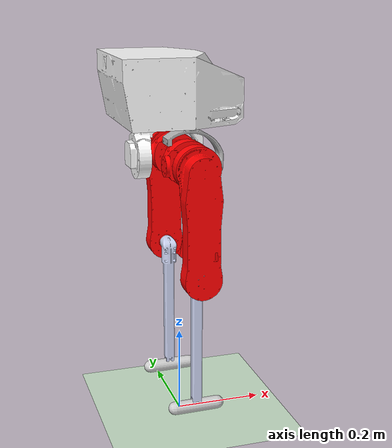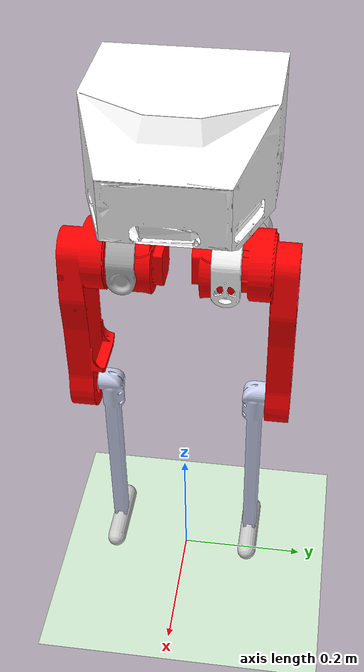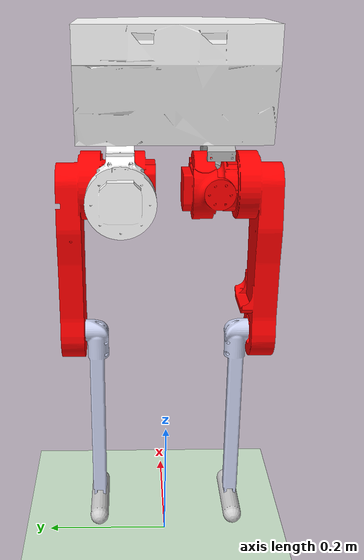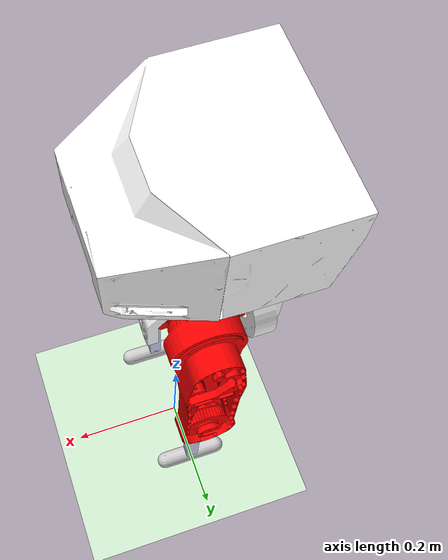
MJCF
<mujoco model="biped">
  <compiler angle="radian" meshdir="../meshes/" autolimits="true"/>
  <option integrator="RK4"/>
  <default/>
  <asset>
    <mesh name="base_link" file="base_link.STL"/>
    <mesh name="R_HIP" file="R_HIP.STL"/>
    <mesh name="R_SHOULDER" file="R_SHOULDER.STL"/>
    <mesh name="R_UPPER_LEG" file="R_UPPER_LEG.STL"/>
    <mesh name="R_LOWER_LEG" file="R_LOWER_LEG.STL"/>
    <mesh name="R_FOOT" file="R_FOOT.STL"/>
    <mesh name="L_HIP" file="L_HIP.STL"/>
    <mesh name="L_SHOULDER" file="L_SHOULDER.STL"/>
    <mesh name="L_UPPER_LEG" file="L_UPPER_LEG.STL"/>
    <mesh name="L_LOWER_LEG" file="L_LOWER_LEG.STL"/>
    <mesh name="L_FOOT" file="L_FOOT.STL"/>

    <texture type="skybox" builtin="gradient" width="128" height="128" rgb1=".4 .6 .8" rgb2="0 0 0"/>

    <hfield name="hill" nrow="400" ncol="400" size="8 8 1 1"/>

    <texture builtin="checker" height="100" name="texplane" rgb1="0.14 0.31 0.27" rgb2="0.47 0.63 0.6" type="2d" width="100"/>
    <material name="MatPlane" reflectance="0.5" shininess="1" specular="1" texrepeat="60 60"  texture="texplane"/>

  </asset>

  <sensor>
    <gyro name="gyro" site="imu_location" />
    <accelerometer name="accelerometer" site="imu_location" />
  </sensor>

  <worldbody>
    <light cutoff="100" diffuse="1 1 1" dir="-0 0 -1.3" directional="true" exponent="1" pos="0 0 1.3" specular=".1 .1 .1"/>
    <geom name="floor" friction="1 .1 .1" condim="3" material="MatPlane" pos="0 0 0" rgba="0.8 0.9 0.8 1" size="40 40 0.01" type="plane"/>

    <body name="base_link" pos="0.0 0.0 0.7">
      <inertial pos="-0.04487 0.0 0.071612" quat="1. 0. 0. 0." mass="3.213" diaginertia="0.023493 0.027733 0.03757" />
      <geom name="base_link" type="mesh" contype="2" rgba="1 1 1 1" mesh="base_link"/>
      <joint armature="0" damping="0" limited="false" name="root" pos="0 0 0" stiffness="0" type="free"/>
      <site name="imu_location" pos="0 0 0" euler="-3.141592 0 0" size="0.01" type="sphere" rgba="1 0 0 1"/>

      <body name="L_HIP" pos="0 0.07 -0.005">
        <inertial pos="0.0219446 0.0 -0.0303917" quat="1. 0. 0. 0." mass="0.0629568" diaginertia="0.0000516473 0.00015296 0.0001162"/>
        <joint name="L_YAW" pos="0 0 0" axis="0 0 1" limited="true" range="-0.3 0.3"/>
        <geom name="L_HIP" type="mesh" contype="2" rgba="1 1 1 1" mesh="L_HIP"/>

        <body name="L_SHOULDER" pos="0.0069 0 -0.081">
          <inertial pos="-0.0382844 -0.0118964 0.0020477" quat="1. 0. 0. 0."  mass="1.009" diaginertia="0.00052198 0.000511 0.00039225"/>
          <joint name="L_HAA" pos="0 0 0" axis="1 0 0" limited="true" range="-0.25 0.25"/>
          <geom name="L_SHOULDER" type="mesh" contype="2" rgba="1 0 0 1" mesh="L_SHOULDER"/>

          <body name="L_UPPER_LEG" pos="0 0 0">
            <inertial pos="-0.00032 -0.05085 -0.05289" quat="1. 0. 0. 0." mass="0.800" diaginertia="0.00110 0.001347 0.00033709"/>
            <joint name="L_HFE" pos="0 0 0" axis="0 1 0" limited="true" range="-1.5 1.5"/>
            <geom name="L_UPPER_LEG" type="mesh" contype="2"  rgba="1 0 0 1" mesh="L_UPPER_LEG"/>

            <body name="L_LOWER_LEG" pos="0 0.0589 -0.23405">
              <inertial pos="0.0 -0.0176 -0.1117" quat="1. 0. 0. 0." mass="0.0923619" diaginertia="0.000437226 0.000437181 1.55724e-05"/>
              <joint name="L_KFE" pos="0 0 0" axis="0 1 0" limited="true" range="-2.2 -0.1"/>
              <geom name="L_LOWER_LEG" type="mesh" contype="2" rgba="0.792157 0.819608 0.933333 1" mesh="L_LOWER_LEG"/>

              <body name="L_FOOT" pos="0 -0.0173 -0.30826">
                <inertial pos="3.02322e-05 -2.36197e-08 -0.0242543" quat="0.710914 0 0.703279 0" mass="0.03134" diaginertia="3.39896e-05 3.35525e-05 1.53506e-06"/>
                <joint name="L_ANKLE" pos="0 0 0" axis="0 1 0" limited="true" range="-0.7 0.7"/>
                <geom name="L_FOOT" friction="1. 0.3 0.3" size="0.015 0.05" pos="0 0 -0.01" quat="0.710914 0 0.703279 0"  type="capsule" rgba="0.8 0.8 0.8 1"/>

              </body>
            </body>
          </body>
        </body>
      </body>

      <body name="R_HIP" pos="0 -0.07 -0.005">
        <inertial pos="0.0219446 0.0 -0.0303917" quat="1. 0. 0. 0." mass="0.0629568" diaginertia="0.000152966 0.00015296 0.0001162"/>
        <joint name="R_YAW" pos="0 0 0" axis="0 0 1" limited="true" range="-0.3 0.3"/>
        <geom name="R_HIP" type="mesh" contype="2" rgba="0.69804 0.69804 0.69804 1" mesh="R_HIP"/>

        <body name="R_SHOULDER" pos="0.0069 0 -0.081">
          <inertial pos="-0.0382844 0.0118964 0.0020477" quat="1. 0. 0. 0." mass="1.009" diaginertia="0.00052198 0.000511 0.00039225"/>
          <joint name="R_HAA" pos="0 0 0" axis="1 0 0" limited="true" range="-0.25 0.25"/>
          <geom name="R_SHOULDER" type="mesh" contype="2" rgba="1 0 0 1" mesh="R_SHOULDER"/>

          <body name="R_UPPER_LEG" pos="0 0 0">
            <inertial pos="-0.00032 0.05085 -0.05289" quat="1. 0. 0. 0." mass="0.800" diaginertia="0.00110 0.001347 0.00033709"/>
            <joint name="R_HFE" pos="0 0 0" axis="0 1 0" limited="true" range="-1.5 1.5"/>
            <geom name="R_UPPER_LEG" type="mesh" contype="2" rgba="1 0 0 1" mesh="R_UPPER_LEG"/>

            <body name="R_LOWER_LEG" pos="0 -0.0584 -0.23405">
              <inertial pos="0.0 0.0176 -0.1117" quat="1. 0. 0. 0." mass="0.0923619" diaginertia="0.00043718 0.000437218 1.557642E-05"/>
              <joint name="R_KFE" pos="0 0 0" axis="0 1 0" limited="true" range="-2.2 -0.1"/>
              <geom name="R_LOWER_LEG" type="mesh" contype="2" rgba="0.792157 0.819608 0.933333 1" mesh="R_LOWER_LEG"/>

              <body name="R_FOOT" pos="0 0.0173 -0.30826">
                <inertial pos="-3.02322e-05 2.36197e-08 -0.0242543" quat="0.710914 0 0.703279 0" mass="0.03134" diaginertia="3.39896e-05 3.35525e-05 1.53506e-06"/>
                <joint name="R_ANKLE" pos="0 0 0" axis="0 1 0" limited="true" range="-0.7 0.7"/>
                <geom name="R_FOOT" friction="1. 0.3 0.3" size="0.015 0.05" pos="0 0 -0.01" quat="0.710914 0 0.703279 0"  type="capsule" rgba="0.8 0.8 0.8 1"/>
              </body>
            </body>
          </body>
        </body>
      </body>

    </body>
  </worldbody>

      <actuator>

        <motor gear="1"  joint="L_YAW" name="L_YAW"/>
            <velocity gear="1" joint="L_YAW" name="L_YAW_VEL" kv="0.5" />

        <motor gear="1"  joint="L_HAA" name="L_HAA"/>
            <velocity gear="1" joint="L_HAA" name="L_HAA_VEL" kv="3.18" />

        <motor gear="1"  joint="L_HFE" name="L_HFE"/>
            <velocity gear="1" joint="L_HFE" name="L_HFE_VEL" kv="3.18" />

        <motor gear="1"  joint="L_KFE" name="L_KFE"/>
            <velocity gear="1" joint="L_KFE" name="L_KFE_VEL" kv="0.95" />

        <motor gear="1"  joint="L_ANKLE" name="L_ANKLE"/>
            <velocity gear="1" joint="L_ANKLE" name="L_ANKLE_VEL" kv="0.005" />

        <motor gear="1"  joint="R_YAW" name="R_YAW"/>
            <velocity gear="1" joint="R_YAW" name="R_YAW_VEL" kv="0.5" />

        <motor gear="1"  joint="R_HAA" name="R_HAA"/>
            <velocity gear="1" joint="R_HAA" name="R_HAA_VEL" kv="3.18" />

        <motor gear="1"  joint="R_HFE" name="R_HFE"/>
            <velocity gear="1" joint="R_HFE" name="R_HFE_VEL" kv="3.18" />

        <motor gear="1"  joint="R_KFE" name="R_KFE"/>
            <velocity gear="1" joint="R_KFE" name="R_KFE_VEL" kv="0.95" />

        <motor gear="1"  joint="R_ANKLE" name="R_ANKLE"/>
            <velocity gear="1" joint="R_ANKLE" name="R_ANKLE_VEL" kv="0.005" />
    </actuator>

</mujoco>
